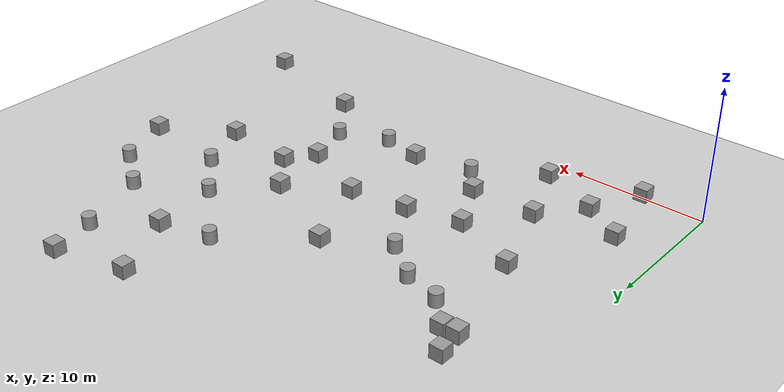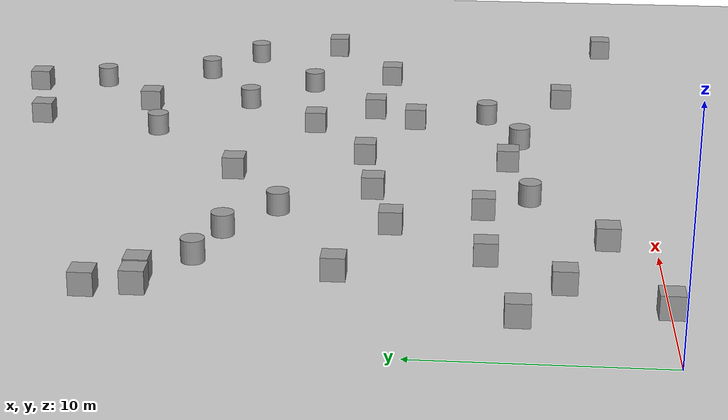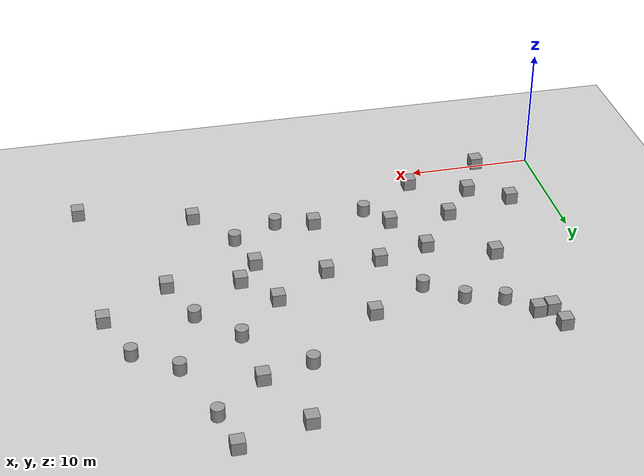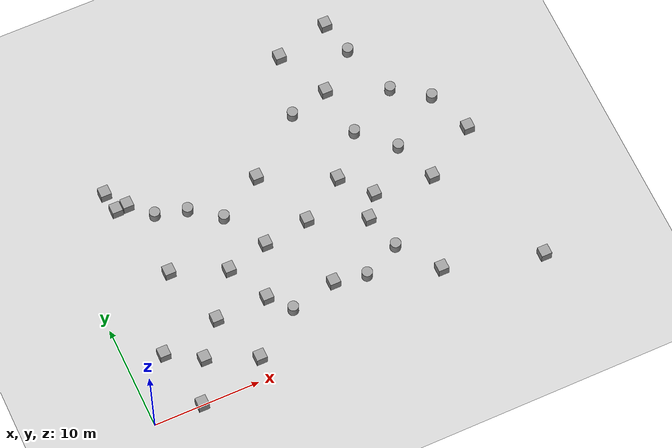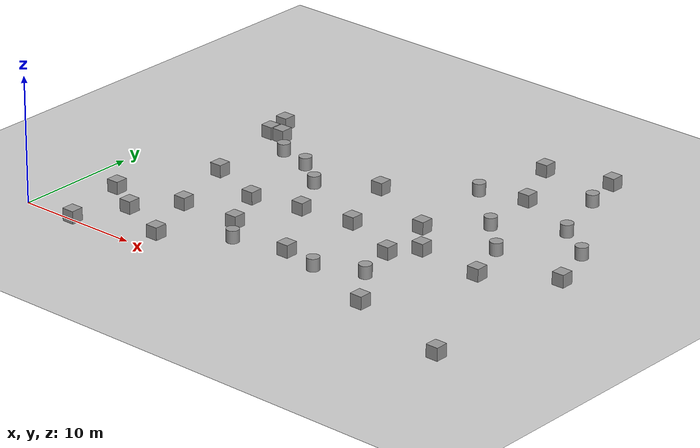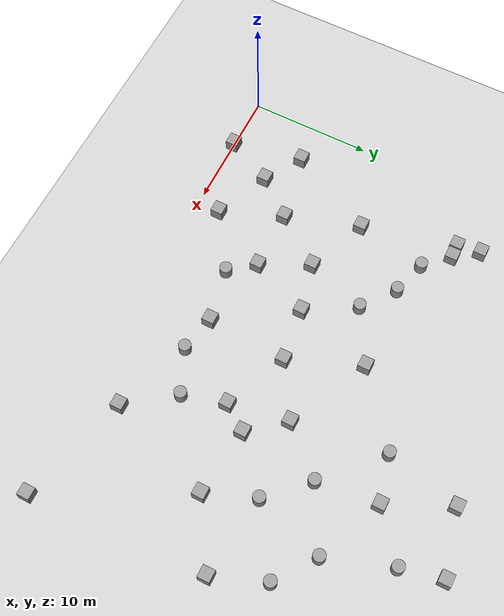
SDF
<sdf version="1.6">
 <world name="default">
  <model name="ground_plane">
   <static>1</static>
   <link name="link">
    <collision name="collision">
     <geometry><plane><normal>0 0 1</normal><size>100 100</size></plane></geometry>
     <surface><friction><ode><mu>100</mu><mu2>50</mu2></ode></friction></surface>
    </collision>
    <visual name="visual">
     <cast_shadows>0</cast_shadows>
     <geometry><plane><normal>0 0 1</normal><size>100 100</size></plane></geometry>
     <material>
      <script><uri>file://media/materials/scripts/gazebo.material</uri><name>Gazebo/Grey</name></script>
     </material>
    </visual>
   </link>
  </model>
  <model name="unit_box">
   <pose>6.48261 3.92862 0.499995 0 1e-05 8.4e-05</pose>
   <link name="link">
    <inertial>
     <mass>1</mass>
     <inertia>
      <ixx>0.166667</ixx>
      <ixy>0</ixy>
      <ixz>0</ixz>
      <iyy>0.166667</iyy>
      <iyz>0</iyz>
      <izz>0.166667</izz>
     </inertia>
    </inertial>
    <collision name="collision"><geometry><box><size>1 1 1</size></box></geometry></collision>
    <visual name="visual">
     <geometry><box><size>1 1 1</size></box></geometry>
     <material>
      <script><name>Gazebo/Grey</name><uri>file://media/materials/scripts/gazebo.material</uri></script>
     </material>
    </visual>
   </link>
  </model>
  <model name="unit_cylinder_0">
   <pose>15.6146 5.09545 0.499997 2e-06 1e-06 0</pose>
   <link name="link">
    <inertial>
     <mass>1</mass>
     <inertia><ixx>0.145833</ixx><ixy>0</ixy><ixz>0</ixz><iyy>0.145833</iyy><iyz>0</iyz><izz>0.125</izz></inertia>
    </inertial>
    <collision name="collision">
     <geometry><cylinder><radius>0.5</radius><length>1</length></cylinder></geometry>
    </collision>
    <visual name="visual">
     <geometry><cylinder><radius>0.5</radius><length>1</length></cylinder></geometry>
     <material>
      <script><name>Gazebo/Grey</name><uri>file://media/materials/scripts/gazebo.material</uri></script>
     </material>
    </visual>
   </link>
  </model>
  <model name="unit_box_4">
   <pose>30.2263 30.3536 0.499995 1e-05 -0 -5e-06</pose>
   <link name="link">
    <inertial>
     <mass>1</mass>
     <inertia>
      <ixx>0.166667</ixx>
      <ixy>0</ixy>
      <ixz>0</ixz>
      <iyy>0.166667</iyy>
      <iyz>0</iyz>
      <izz>0.166667</izz>
     </inertia>
    </inertial>
    <collision name="collision"><geometry><box><size>1 1 1</size></box></geometry></collision>
    <visual name="visual">
     <geometry><box><size>1 1 1</size></box></geometry>
     <material>
      <script><name>Gazebo/Grey</name><uri>file://media/materials/scripts/gazebo.material</uri></script>
     </material>
    </visual>
   </link>
  </model>
  <model name="unit_box_5">
   <pose>27.38 23.9767 0.499995 0 1e-05 5e-06</pose>
   <link name="link">
    <inertial>
     <mass>1</mass>
     <inertia>
      <ixx>0.166667</ixx>
      <ixy>0</ixy>
      <ixz>0</ixz>
      <iyy>0.166667</iyy>
      <iyz>0</iyz>
      <izz>0.166667</izz>
     </inertia>
    </inertial>
    <collision name="collision"><geometry><box><size>1 1 1</size></box></geometry></collision>
    <visual name="visual">
     <geometry><box><size>1 1 1</size></box></geometry>
     <material>
      <script><name>Gazebo/Grey</name><uri>file://media/materials/scripts/gazebo.material</uri></script>
     </material>
    </visual>
   </link>
  </model>
  <model name="unit_cylinder_1">
   <pose>32.8418 21.7156 0.499994 -4e-06 -3e-06 -0</pose>
   <link name="link">
    <inertial>
     <mass>1</mass>
     <inertia><ixx>0.145833</ixx><ixy>0</ixy><ixz>0</ixz><iyy>0.145833</iyy><iyz>0</iyz><izz>0.125</izz></inertia>
    </inertial>
    <collision name="collision">
     <geometry><cylinder><radius>0.5</radius><length>1</length></cylinder></geometry>
    </collision>
    <visual name="visual">
     <geometry><cylinder><radius>0.5</radius><length>1</length></cylinder></geometry>
     <material>
      <script><name>Gazebo/Grey</name><uri>file://media/materials/scripts/gazebo.material</uri></script>
     </material>
    </visual>
   </link>
  </model>
  <model name="unit_box_6">
   <pose>11 2.00001 0.499995 0 1e-05 5e-06</pose>
   <link name="link">
    <inertial>
     <mass>1</mass>
     <inertia>
      <ixx>0.166667</ixx>
      <ixy>0</ixy>
      <ixz>0</ixz>
      <iyy>0.166667</iyy>
      <iyz>0</iyz>
      <izz>0.166667</izz>
     </inertia>
    </inertial>
    <collision name="collision"><geometry><box><size>1 1 1</size></box></geometry></collision>
    <visual name="visual">
     <geometry><box><size>1 1 1</size></box></geometry>
     <material>
      <script><name>Gazebo/Grey</name><uri>file://media/materials/scripts/gazebo.material</uri></script>
     </material>
    </visual>
   </link>
  </model>
  <model name="unit_box_7">
   <pose>25 29 0.499995 1e-05 -0 -5e-06</pose>
   <link name="link">
    <inertial>
     <mass>1</mass>
     <inertia>
      <ixx>0.166667</ixx>
      <ixy>0</ixy>
      <ixz>0</ixz>
      <iyy>0.166667</iyy>
      <iyz>0</iyz>
      <izz>0.166667</izz>
     </inertia>
    </inertial>
    <collision name="collision"><geometry><box><size>1 1 1</size></box></geometry></collision>
    <visual name="visual">
     <geometry><box><size>1 1 1</size></box></geometry>
     <material>
      <script><name>Gazebo/Grey</name><uri>file://media/materials/scripts/gazebo.material</uri></script>
     </material>
    </visual>
   </link>
  </model>
  <model name="unit_box_8">
   <pose>18 18.4762 0.499995 0 1e-05 5e-06</pose>
   <link name="link">
    <inertial>
     <mass>1</mass>
     <inertia>
      <ixx>0.166667</ixx>
      <ixy>0</ixy>
      <ixz>0</ixz>
      <iyy>0.166667</iyy>
      <iyz>0</iyz>
      <izz>0.166667</izz>
     </inertia>
    </inertial>
    <collision name="collision"><geometry><box><size>1 1 1</size></box></geometry></collision>
    <visual name="visual">
     <geometry><box><size>1 1 1</size></box></geometry>
     <material>
      <script><name>Gazebo/Grey</name><uri>file://media/materials/scripts/gazebo.material</uri></script>
     </material>
    </visual>
   </link>
  </model>
  <model name="unit_cylinder_2">
   <pose>23 5.43729 0.499994 -4e-06 -3e-06 -0</pose>
   <link name="link">
    <inertial>
     <mass>1</mass>
     <inertia><ixx>0.145833</ixx><ixy>0</ixy><ixz>0</ixz><iyy>0.145833</iyy><iyz>0</iyz><izz>0.125</izz></inertia>
    </inertial>
    <collision name="collision">
     <geometry><cylinder><radius>0.5</radius><length>1</length></cylinder></geometry>
    </collision>
    <visual name="visual">
     <geometry><cylinder><radius>0.5</radius><length>1</length></cylinder></geometry>
     <material>
      <script><name>Gazebo/Grey</name><uri>file://media/materials/scripts/gazebo.material</uri></script>
     </material>
    </visual>
   </link>
  </model>
  <model name="unit_box_14">
   <pose>4.566 1.2e-05 0.499995 0 1e-05 5e-06</pose>
   <link name="link">
    <inertial>
     <mass>1</mass>
     <inertia>
      <ixx>0.166667</ixx>
      <ixy>0</ixy>
      <ixz>0</ixz>
      <iyy>0.166667</iyy>
      <iyz>0</iyz>
      <izz>0.166667</izz>
     </inertia>
    </inertial>
    <collision name="collision"><geometry><box><size>1 1 1</size></box></geometry></collision>
    <visual name="visual">
     <geometry><box><size>1 1 1</size></box></geometry>
     <material>
      <script><name>Gazebo/Grey</name><uri>file://media/materials/scripts/gazebo.material</uri></script>
     </material>
    </visual>
   </link>
  </model>
  <model name="unit_cylinder_4">
   <pose>26.5227 7 0.499996 2e-06 1e-06 0</pose>
   <link name="link">
    <inertial>
     <mass>1</mass>
     <inertia><ixx>0.145833</ixx><ixy>0</ixy><ixz>0</ixz><iyy>0.145833</iyy><iyz>0</iyz><izz>0.125</izz></inertia>
    </inertial>
    <collision name="collision">
     <geometry><cylinder><radius>0.5</radius><length>1</length></cylinder></geometry>
    </collision>
    <visual name="visual">
     <geometry><cylinder><radius>0.5</radius><length>1</length></cylinder></geometry>
     <material>
      <script><name>Gazebo/Grey</name><uri>file://media/materials/scripts/gazebo.material</uri></script>
     </material>
    </visual>
   </link>
  </model>
  <model name="unit_cylinder_5">
   <pose>28 19 0.499993 -0 -0 -0</pose>
   <link name="link">
    <inertial>
     <mass>1</mass>
     <inertia><ixx>0.145833</ixx><ixy>0</ixy><ixz>0</ixz><iyy>0.145833</iyy><iyz>0</iyz><izz>0.125</izz></inertia>
    </inertial>
    <collision name="collision">
     <geometry><cylinder><radius>0.5</radius><length>1</length></cylinder></geometry>
    </collision>
    <visual name="visual">
     <geometry><cylinder><radius>0.5</radius><length>1</length></cylinder></geometry>
     <material>
      <script><name>Gazebo/Grey</name><uri>file://media/materials/scripts/gazebo.material</uri></script>
     </material>
    </visual>
   </link>
  </model>
  <model name="unit_cylinder_6">
   <pose>11 18 0.499994 -2e-06 -1e-06 0</pose>
   <link name="link">
    <inertial>
     <mass>1</mass>
     <inertia><ixx>0.145833</ixx><ixy>0</ixy><ixz>0</ixz><iyy>0.145833</iyy><iyz>0</iyz><izz>0.125</izz></inertia>
    </inertial>
    <collision name="collision">
     <geometry><cylinder><radius>0.5</radius><length>1</length></cylinder></geometry>
    </collision>
    <visual name="visual">
     <geometry><cylinder><radius>0.5</radius><length>1</length></cylinder></geometry>
     <material>
      <script><name>Gazebo/Grey</name><uri>file://media/materials/scripts/gazebo.material</uri></script>
     </material>
    </visual>
   </link>
  </model>
  <model name="unit_box_19">
   <pose>3.39289 5.80037 0.499995 1e-05 -0 0</pose>
   <link name="link">
    <inertial>
     <mass>1</mass>
     <inertia>
      <ixx>0.166667</ixx>
      <ixy>0</ixy>
      <ixz>0</ixz>
      <iyy>0.166667</iyy>
      <iyz>0</iyz>
      <izz>0.166667</izz>
     </inertia>
    </inertial>
    <collision name="collision"><geometry><box><size>1 1 1</size></box></geometry></collision>
    <visual name="visual">
     <geometry><box><size>1 1 1</size></box></geometry>
     <material>
      <script><name>Gazebo/Grey</name><uri>file://media/materials/scripts/gazebo.material</uri></script>
     </material>
    </visual>
   </link>
  </model>
  <model name="unit_cylinder_8">
   <pose>8.12361 18.8088 0.499994 -2e-06 -1e-06 0</pose>
   <link name="link">
    <inertial>
     <mass>1</mass>
     <inertia><ixx>0.145833</ixx><ixy>0</ixy><ixz>0</ixz><iyy>0.145833</iyy><iyz>0</iyz><izz>0.125</izz></inertia>
    </inertial>
    <collision name="collision">
     <geometry><cylinder><radius>0.5</radius><length>1</length></cylinder></geometry>
    </collision>
    <visual name="visual">
     <geometry><cylinder><radius>0.5</radius><length>1</length></cylinder></geometry>
     <material>
      <script><name>Gazebo/Grey</name><uri>file://media/materials/scripts/gazebo.material</uri></script>
     </material>
    </visual>
   </link>
  </model>
  <model name="unit_box_24">
   <pose>13.9406 7.11541 0.499995 1e-05 -0 0</pose>
   <link name="link">
    <inertial>
     <mass>1</mass>
     <inertia>
      <ixx>0.166667</ixx>
      <ixy>0</ixy>
      <ixz>0</ixz>
      <iyy>0.166667</iyy>
      <iyz>0</iyz>
      <izz>0.166667</izz>
     </inertia>
    </inertial>
    <collision name="collision"><geometry><box><size>1 1 1</size></box></geometry></collision>
    <visual name="visual">
     <geometry><box><size>1 1 1</size></box></geometry>
     <material>
      <script><name>Gazebo/Grey</name><uri>file://media/materials/scripts/gazebo.material</uri></script>
     </material>
    </visual>
   </link>
  </model>
  <model name="unit_box_25">
   <pose>4.81764 22.6 0.499995 1e-05 -0 0</pose>
   <link name="link">
    <inertial>
     <mass>1</mass>
     <inertia>
      <ixx>0.166667</ixx>
      <ixy>0</ixy>
      <ixz>0</ixz>
      <iyy>0.166667</iyy>
      <iyz>0</iyz>
      <izz>0.166667</izz>
     </inertia>
    </inertial>
    <collision name="collision"><geometry><box><size>1 1 1</size></box></geometry></collision>
    <visual name="visual">
     <geometry><box><size>1 1 1</size></box></geometry>
     <material>
      <script><name>Gazebo/Grey</name><uri>file://media/materials/scripts/gazebo.material</uri></script>
     </material>
    </visual>
   </link>
  </model>
  <model name="unit_box_27">
   <pose>19.9677 6.01957 0.499995 1e-05 -0 5e-06</pose>
   <link name="link">
    <inertial>
     <mass>1</mass>
     <inertia>
      <ixx>0.166667</ixx>
      <ixy>0</ixy>
      <ixz>0</ixz>
      <iyy>0.166667</iyy>
      <iyz>0</iyz>
      <izz>0.166667</izz>
     </inertia>
    </inertial>
    <collision name="collision"><geometry><box><size>1 1 1</size></box></geometry></collision>
    <visual name="visual">
     <geometry><box><size>1 1 1</size></box></geometry>
     <material>
      <script><name>Gazebo/Grey</name><uri>file://media/materials/scripts/gazebo.material</uri></script>
     </material>
    </visual>
   </link>
  </model>
  <model name="unit_box_28_clone_1">
   <pose>37.5963 15.2134 0.5005 -0 -0 -0</pose>
   <link name="link">
    <inertial>
     <mass>1</mass>
     <inertia>
      <ixx>0.166667</ixx>
      <ixy>0</ixy>
      <ixz>0</ixz>
      <iyy>0.166667</iyy>
      <iyz>0</iyz>
      <izz>0.166667</izz>
     </inertia>
    </inertial>
    <collision name="collision"><geometry><box><size>1 1 1</size></box></geometry></collision>
    <visual name="visual">
     <geometry><box><size>1 1 1</size></box></geometry>
     <material>
      <script><name>Gazebo/Grey</name><uri>file://media/materials/scripts/gazebo.material</uri></script>
     </material>
    </visual>
   </link>
  </model>
  <model name="unit_box_28_clone_2">
   <pose>32.5475 12 0.5005 -0 -0 -0</pose>
   <link name="link">
    <inertial>
     <mass>1</mass>
     <inertia>
      <ixx>0.166667</ixx>
      <ixy>0</ixy>
      <ixz>0</ixz>
      <iyy>0.166667</iyy>
      <iyz>0</iyz>
      <izz>0.166667</izz>
     </inertia>
    </inertial>
    <collision name="collision"><geometry><box><size>1 1 1</size></box></geometry></collision>
    <visual name="visual">
     <geometry><box><size>1 1 1</size></box></geometry>
     <material>
      <script><name>Gazebo/Grey</name><uri>file://media/materials/scripts/gazebo.material</uri></script>
     </material>
    </visual>
   </link>
  </model>
  <model name="unit_box_28_clone_3">
   <pose>27 12.5346 0.5005 -0 -0 -0</pose>
   <link name="link">
    <inertial>
     <mass>1</mass>
     <inertia>
      <ixx>0.166667</ixx>
      <ixy>0</ixy>
      <ixz>0</ixz>
      <iyy>0.166667</iyy>
      <iyz>0</iyz>
      <izz>0.166667</izz>
     </inertia>
    </inertial>
    <collision name="collision"><geometry><box><size>1 1 1</size></box></geometry></collision>
    <visual name="visual">
     <geometry><box><size>1 1 1</size></box></geometry>
     <material>
      <script><name>Gazebo/Grey</name><uri>file://media/materials/scripts/gazebo.material</uri></script>
     </material>
    </visual>
   </link>
  </model>
  <model name="unit_box_28_clone_4">
   <pose>20.3648 12.6324 0.5005 -0 -0 -0</pose>
   <link name="link">
    <inertial>
     <mass>1</mass>
     <inertia>
      <ixx>0.166667</ixx>
      <ixy>0</ixy>
      <ixz>0</ixz>
      <iyy>0.166667</iyy>
      <iyz>0</iyz>
      <izz>0.166667</izz>
     </inertia>
    </inertial>
    <collision name="collision"><geometry><box><size>1 1 1</size></box></geometry></collision>
    <visual name="visual">
     <geometry><box><size>1 1 1</size></box></geometry>
     <material>
      <script><name>Gazebo/Grey</name><uri>file://media/materials/scripts/gazebo.material</uri></script>
     </material>
    </visual>
   </link>
  </model>
  <model name="unit_box_28_clone_5">
   <pose>16 12 0.5005 -0 -0 -0</pose>
   <link name="link">
    <inertial>
     <mass>1</mass>
     <inertia>
      <ixx>0.166667</ixx>
      <ixy>0</ixy>
      <ixz>0</ixz>
      <iyy>0.166667</iyy>
      <iyz>0</iyz>
      <izz>0.166667</izz>
     </inertia>
    </inertial>
    <collision name="collision"><geometry><box><size>1 1 1</size></box></geometry></collision>
    <visual name="visual">
     <geometry><box><size>1 1 1</size></box></geometry>
     <material>
      <script><name>Gazebo/Grey</name><uri>file://media/materials/scripts/gazebo.material</uri></script>
     </material>
    </visual>
   </link>
  </model>
  <model name="unit_box_28_clone_6">
   <pose>24.6492 15.3412 0.5005 -0 -0 -0</pose>
   <link name="link">
    <inertial>
     <mass>1</mass>
     <inertia>
      <ixx>0.166667</ixx>
      <ixy>0</ixy>
      <ixz>0</ixz>
      <iyy>0.166667</iyy>
      <iyz>0</iyz>
      <izz>0.166667</izz>
     </inertia>
    </inertial>
    <collision name="collision"><geometry><box><size>1 1 1</size></box></geometry></collision>
    <visual name="visual">
     <geometry><box><size>1 1 1</size></box></geometry>
     <material>
      <script><name>Gazebo/Grey</name><uri>file://media/materials/scripts/gazebo.material</uri></script>
     </material>
    </visual>
   </link>
  </model>
  <model name="unit_box_28_clone_7">
   <pose>25.5263 10.4914 0.5005 -0 -0 -0</pose>
   <link name="link">
    <inertial>
     <mass>1</mass>
     <inertia>
      <ixx>0.166667</ixx>
      <ixy>0</ixy>
      <ixz>0</ixz>
      <iyy>0.166667</iyy>
      <iyz>0</iyz>
      <izz>0.166667</izz>
     </inertia>
    </inertial>
    <collision name="collision"><geometry><box><size>1 1 1</size></box></geometry></collision>
    <visual name="visual">
     <geometry><box><size>1 1 1</size></box></geometry>
     <material>
      <script><name>Gazebo/Grey</name><uri>file://media/materials/scripts/gazebo.material</uri></script>
     </material>
    </visual>
   </link>
  </model>
  <model name="unit_box_28_clone_8">
   <pose>29.3314 3.2549 0.5005 -0 -0 -0</pose>
   <link name="link">
    <inertial>
     <mass>1</mass>
     <inertia>
      <ixx>0.166667</ixx>
      <ixy>0</ixy>
      <ixz>0</ixz>
      <iyy>0.166667</iyy>
      <iyz>0</iyz>
      <izz>0.166667</izz>
     </inertia>
    </inertial>
    <collision name="collision"><geometry><box><size>1 1 1</size></box></geometry></collision>
    <visual name="visual">
     <geometry><box><size>1 1 1</size></box></geometry>
     <material>
      <script><name>Gazebo/Grey</name><uri>file://media/materials/scripts/gazebo.material</uri></script>
     </material>
    </visual>
   </link>
  </model>
  <model name="unit_box_28_clone_50">
   <pose>7 13 0.5005 -0 -0 -0</pose>
   <link name="link">
    <inertial>
     <mass>1</mass>
     <inertia>
      <ixx>0.166667</ixx>
      <ixy>0</ixy>
      <ixz>0</ixz>
      <iyy>0.166667</iyy>
      <iyz>0</iyz>
      <izz>0.166667</izz>
     </inertia>
    </inertial>
    <collision name="collision"><geometry><box><size>1 1 1</size></box></geometry></collision>
    <visual name="visual">
     <geometry><box><size>1 1 1</size></box></geometry>
     <material>
      <script><name>Gazebo/Grey</name><uri>file://media/materials/scripts/gazebo.material</uri></script>
     </material>
    </visual>
   </link>
  </model>
  <model name="unit_box_28_clone_51">
   <pose>12 11 0.5005 -0 -0 -0</pose>
   <link name="link">
    <inertial>
     <mass>1</mass>
     <inertia>
      <ixx>0.166667</ixx>
      <ixy>0</ixy>
      <ixz>0</ixz>
      <iyy>0.166667</iyy>
      <iyz>0</iyz>
      <izz>0.166667</izz>
     </inertia>
    </inertial>
    <collision name="collision"><geometry><box><size>1 1 1</size></box></geometry></collision>
    <visual name="visual">
     <geometry><box><size>1 1 1</size></box></geometry>
     <material>
      <script><name>Gazebo/Grey</name><uri>file://media/materials/scripts/gazebo.material</uri></script>
     </material>
    </visual>
   </link>
  </model>
  <model name="unit_box_28_clone_52">
   <pose>9 7 0.499995 0 1e-05 0</pose>
   <link name="link">
    <inertial>
     <mass>1</mass>
     <inertia>
      <ixx>0.166667</ixx>
      <ixy>0</ixy>
      <ixz>0</ixz>
      <iyy>0.166667</iyy>
      <iyz>0</iyz>
      <izz>0.166667</izz>
     </inertia>
    </inertial>
    <collision name="collision"><geometry><box><size>1 1 1</size></box></geometry></collision>
    <visual name="visual">
     <geometry><box><size>1 1 1</size></box></geometry>
     <material>
      <script><name>Gazebo/Grey</name><uri>file://media/materials/scripts/gazebo.material</uri></script>
     </material>
    </visual>
   </link>
  </model>
  <model name="unit_cylinder_11_clone_22">
   <pose>13.6826 15.9741 0.500502 1e-06 -4e-06 -0.000347</pose>
   <link name="link">
    <inertial>
     <mass>1</mass>
     <inertia><ixx>0.145833</ixx><ixy>0</ixy><ixz>0</ixz><iyy>0.145833</iyy><iyz>0</iyz><izz>0.125</izz></inertia>
    </inertial>
    <collision name="collision">
     <geometry><cylinder><radius>0.5</radius><length>1</length></cylinder></geometry>
    </collision>
    <visual name="visual">
     <geometry><cylinder><radius>0.5</radius><length>1</length></cylinder></geometry>
     <material>
      <script><name>Gazebo/Grey</name><uri>file://media/materials/scripts/gazebo.material</uri></script>
     </material>
    </visual>
   </link>
  </model>
  <model name="unit_cylinder_11_clone_23">
   <pose>23.6079 22.997 0.499991 -0 -0 -0</pose>
   <link name="link">
    <inertial>
     <mass>1</mass>
     <inertia><ixx>0.145833</ixx><ixy>0</ixy><ixz>0</ixz><iyy>0.145833</iyy><iyz>0</iyz><izz>0.125</izz></inertia>
    </inertial>
    <collision name="collision">
     <geometry><cylinder><radius>0.5</radius><length>1</length></cylinder></geometry>
    </collision>
    <visual name="visual">
     <geometry><cylinder><radius>0.5</radius><length>1</length></cylinder></geometry>
     <material>
      <script><name>Gazebo/Grey</name><uri>file://media/materials/scripts/gazebo.material</uri></script>
     </material>
    </visual>
   </link>
  </model>
  <model name="unit_cylinder_11_clone_24">
   <pose>31 27 0.499991 -0 -0 -0</pose>
   <link name="link">
    <inertial>
     <mass>1</mass>
     <inertia><ixx>0.145833</ixx><ixy>0</ixy><ixz>0</ixz><iyy>0.145833</iyy><iyz>0</iyz><izz>0.125</izz></inertia>
    </inertial>
    <collision name="collision">
     <geometry><cylinder><radius>0.5</radius><length>1</length></cylinder></geometry>
    </collision>
    <visual name="visual">
     <geometry><cylinder><radius>0.5</radius><length>1</length></cylinder></geometry>
     <material>
      <script><name>Gazebo/Grey</name><uri>file://media/materials/scripts/gazebo.material</uri></script>
     </material>
    </visual>
   </link>
  </model>
  <model name="unit_cylinder_11_clone_25">
   <pose>30.9998 16 0.500501 -1e-06 1e-06 -0.000317</pose>
   <link name="link">
    <inertial>
     <mass>1</mass>
     <inertia><ixx>0.145833</ixx><ixy>0</ixy><ixz>0</ixz><iyy>0.145833</iyy><iyz>0</iyz><izz>0.125</izz></inertia>
    </inertial>
    <collision name="collision">
     <geometry><cylinder><radius>0.5</radius><length>1</length></cylinder></geometry>
    </collision>
    <visual name="visual">
     <geometry><cylinder><radius>0.5</radius><length>1</length></cylinder></geometry>
     <material>
      <script><name>Gazebo/Grey</name><uri>file://media/materials/scripts/gazebo.material</uri></script>
     </material>
    </visual>
   </link>
  </model>
  <model name="unit_cylinder_11_clone_26">
   <pose>36 19.441 0.499991 -0 -0 -0</pose>
   <link name="link">
    <inertial>
     <mass>1</mass>
     <inertia><ixx>0.145833</ixx><ixy>0</ixy><ixz>0</ixz><iyy>0.145833</iyy><iyz>0</iyz><izz>0.125</izz></inertia>
    </inertial>
    <collision name="collision">
     <geometry><cylinder><radius>0.5</radius><length>1</length></cylinder></geometry>
    </collision>
    <visual name="visual">
     <geometry><cylinder><radius>0.5</radius><length>1</length></cylinder></geometry>
     <material>
      <script><name>Gazebo/Grey</name><uri>file://media/materials/scripts/gazebo.material</uri></script>
     </material>
    </visual>
   </link>
  </model>
  <model name="unit_box_28_clone_50_clone">
   <pose>6.2149 20.7115 0.499995 1e-05 -0 0</pose>
   <link name="link">
    <inertial>
     <mass>1</mass>
     <inertia>
      <ixx>0.166667</ixx>
      <ixy>0</ixy>
      <ixz>0</ixz>
      <iyy>0.166667</iyy>
      <iyz>0</iyz>
      <izz>0.166667</izz>
     </inertia>
    </inertial>
    <collision name="collision"><geometry><box><size>1 1 1</size></box></geometry></collision>
    <visual name="visual">
     <geometry><box><size>1 1 1</size></box></geometry>
     <material>
      <script><name>Gazebo/Grey</name><uri>file://media/materials/scripts/gazebo.material</uri></script>
     </material>
    </visual>
   </link>
  </model>
  <model name="unit_box_28_clone_50_clone_0">
   <pose>5.11632 20.6489 0.499995 0 1e-05 0</pose>
   <link name="link">
    <inertial>
     <mass>1</mass>
     <inertia>
      <ixx>0.166667</ixx>
      <ixy>0</ixy>
      <ixz>0</ixz>
      <iyy>0.166667</iyy>
      <iyz>0</iyz>
      <izz>0.166667</izz>
     </inertia>
    </inertial>
    <collision name="collision"><geometry><box><size>1 1 1</size></box></geometry></collision>
    <visual name="visual">
     <geometry><box><size>1 1 1</size></box></geometry>
     <material>
      <script><name>Gazebo/Grey</name><uri>file://media/materials/scripts/gazebo.material</uri></script>
     </material>
    </visual>
   </link>
  </model>
  <model name="unit_box_28_clone_50_clone_8">
   <pose>38.3204 0.774858 0.5 0 -0 0</pose>
   <link name="link">
    <inertial>
     <mass>1</mass>
     <inertia>
      <ixx>0.166667</ixx>
      <ixy>0</ixy>
      <ixz>0</ixz>
      <iyy>0.166667</iyy>
      <iyz>0</iyz>
      <izz>0.166667</izz>
     </inertia>
    </inertial>
    <collision name="collision"><geometry><box><size>1 1 1</size></box></geometry></collision>
    <visual name="visual">
     <geometry><box><size>1 1 1</size></box></geometry>
     <material>
      <script><name>Gazebo/Grey</name><uri>file://media/materials/scripts/gazebo.material</uri></script>
     </material>
    </visual>
   </link>
  </model>
 </world>
</sdf>
